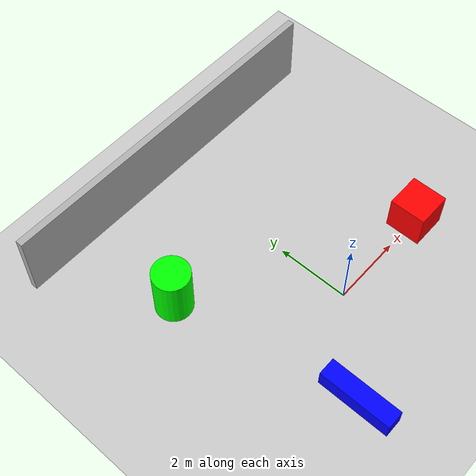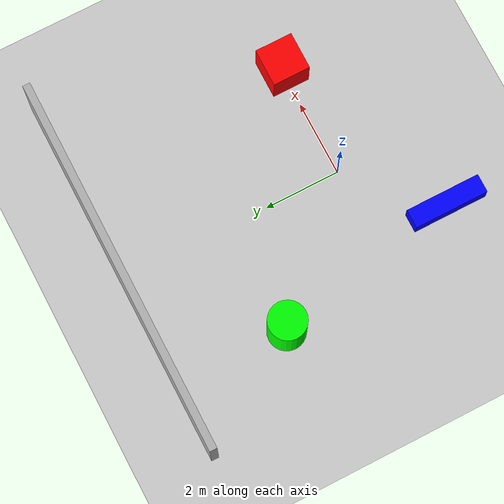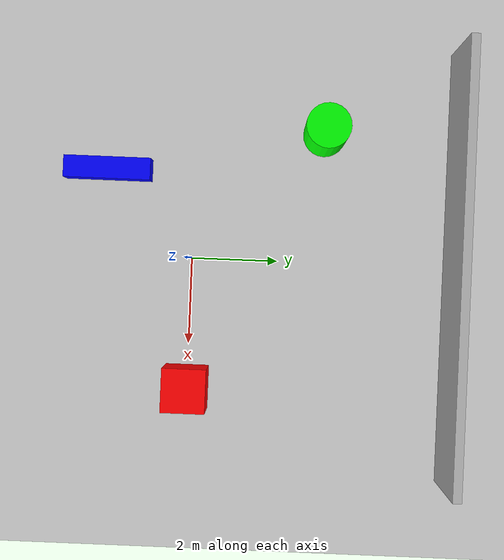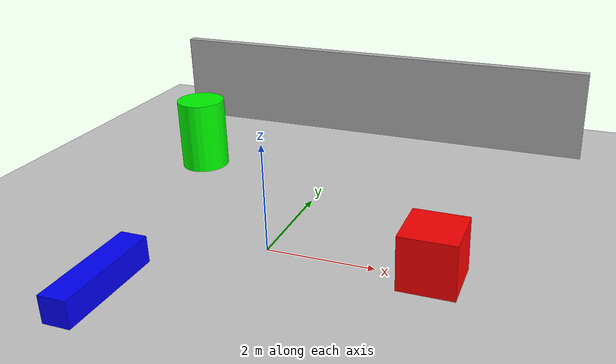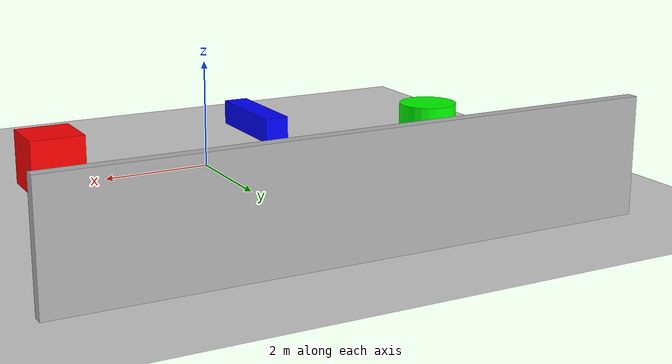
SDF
<?xml version="1.0"?>
<sdf version="1.9">
  <world name="custom_world">

    <!-- الفيزياء -->
    <physics name="1ms" type="ignored">
      <max_step_size>0.001</max_step_size>
      <real_time_factor>1.0</real_time_factor>
    </physics>

    <!-- Plugins -->
    <plugin filename="gz-sim-physics-system" name="gz::sim::systems::Physics"/>
    <plugin filename="gz-sim-user-commands-system" name="gz::sim::systems::UserCommands"/>
    <plugin filename="gz-sim-scene-broadcaster-system" name="gz::sim::systems::SceneBroadcaster"/>

    <!-- الإضاءة -->
    <light type="directional" name="sun">
      <pose>0 0 10 0 0 0</pose>
      <diffuse>1 1 1 1</diffuse>
      <specular>0.5 0.5 0.5 1</specular>
      <direction>-0.5 0.1 -0.9</direction>
    </light>

    <!-- الأرضية -->
    <model name="ground_plane">
      <static>true</static>
      <link name="link">
        <collision name="collision">
          <geometry>
            <plane><normal>0 0 1</normal><size>100 100</size></plane>
          </geometry>
        </collision>
        <visual name="visual">
          <geometry>
            <plane><normal>0 0 1</normal><size>100 100</size></plane>
          </geometry>
          <material>
            <ambient>0.8 0.8 0.8 1</ambient>
            <diffuse>0.8 0.8 0.8 1</diffuse>
          </material>
        </visual>
      </link>
    </model>

    <!-- عائق 1: صندوق كبير -->
    <model name="box_obstacle_1">
      <pose>3 0 0.5 0 0 0</pose>
      <static>true</static>
      <link name="link">
        <collision name="collision">
          <geometry>
            <box><size>1 1 1</size></box>
          </geometry>
        </collision>
        <visual name="visual">
          <geometry>
            <box><size>1 1 1</size></box>
          </geometry>
          <material>
            <ambient>1 0 0 1</ambient>
            <diffuse>1 0 0 1</diffuse>
          </material>
        </visual>
      </link>
    </model>

    <!-- عائق 2: أسطوانة -->
    <model name="cylinder_obstacle">
      <pose>-3 3 0.75 0 0 0</pose>
      <static>true</static>
      <link name="link">
        <collision name="collision">
          <geometry>
            <cylinder><radius>0.5</radius><length>1.5</length></cylinder>
          </geometry>
        </collision>
        <visual name="visual">
          <geometry>
            <cylinder><radius>0.5</radius><length>1.5</length></cylinder>
          </geometry>
          <material>
            <ambient>0 1 0 1</ambient>
            <diffuse>0 1 0 1</diffuse>
          </material>
        </visual>
      </link>
    </model>

    <!-- جدار طويل -->
    <model name="wall_1">
      <pose>0 6 1 0 0 0</pose>
      <static>true</static>
      <link name="link">
        <collision name="collision">
          <geometry>
            <box><size>10 0.2 2</size></box>
          </geometry>
        </collision>
        <visual name="visual">
          <geometry>
            <box><size>10 0.2 2</size></box>
          </geometry>
          <material>
            <ambient>0.7 0.7 0.7 1</ambient>
            <diffuse>0.7 0.7 0.7 1</diffuse>
          </material>
        </visual>
      </link>
    </model>

    <!-- متاهة من الصناديق -->
    <model name="maze_box_1">
      <pose>-2 -2 0.25 0 0 0</pose>
      <static>true</static>
      <link name="link">
        <collision name="collision">
          <geometry>
            <box><size>0.5 2 0.5</size></box>
          </geometry>
        </collision>
        <visual name="visual">
          <geometry>
            <box><size>0.5 2 0.5</size></box>
          </geometry>
          <material>
            <ambient>0 0 1 1</ambient>
            <diffuse>0 0 1 1</diffuse>
          </material>
        </visual>
      </link>
    </model>

  </world>
</sdf>
